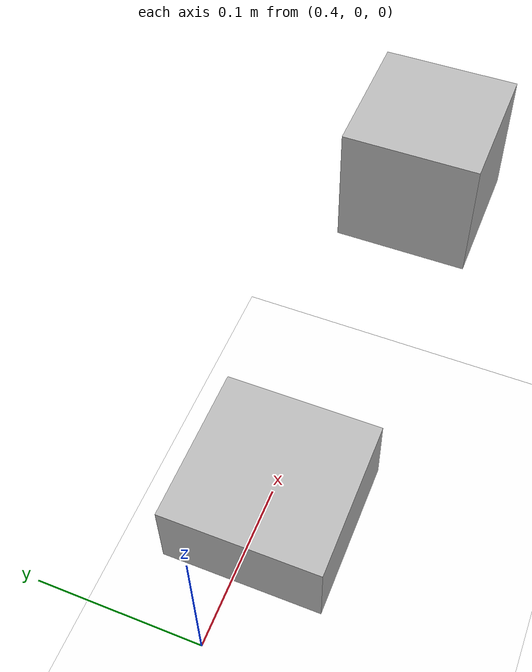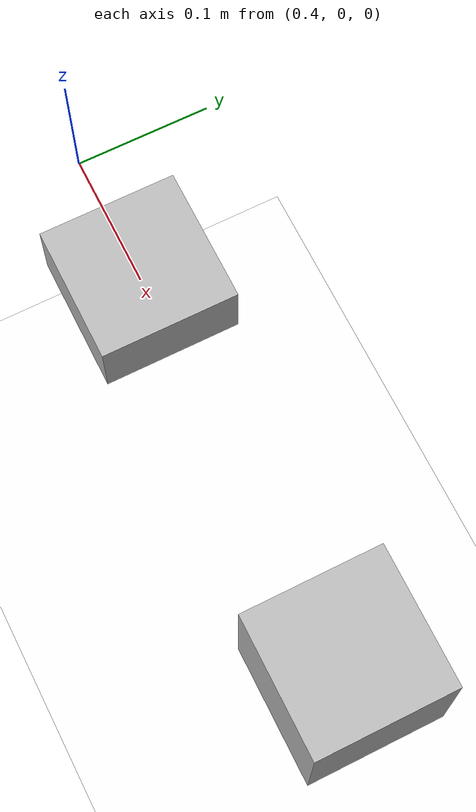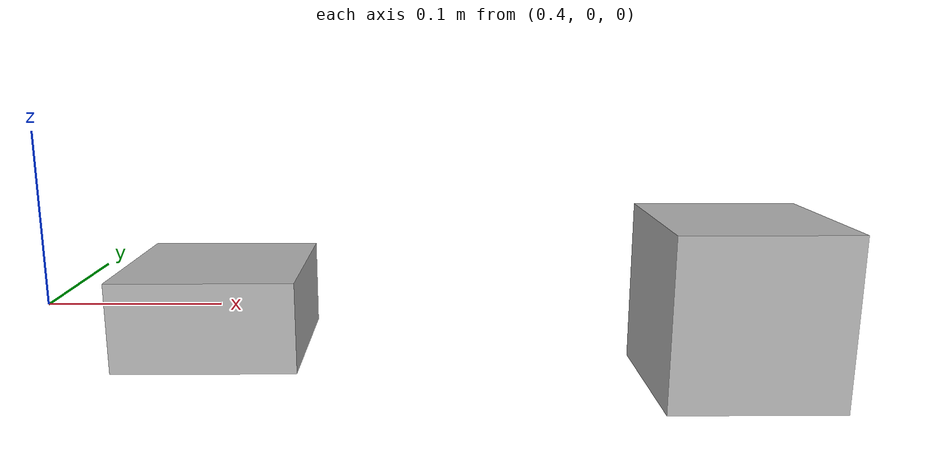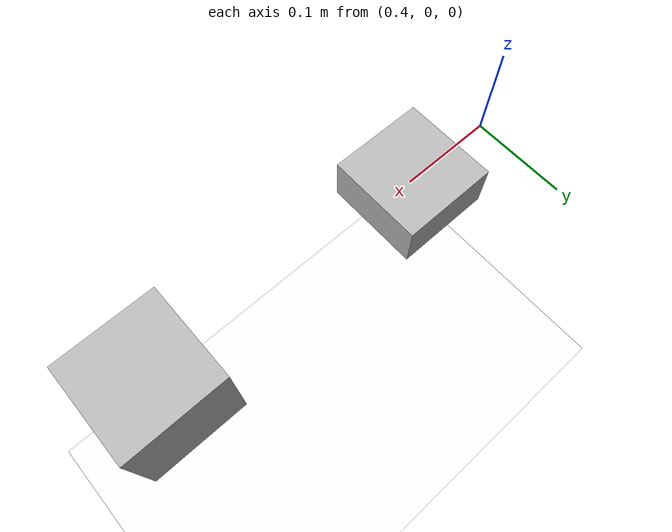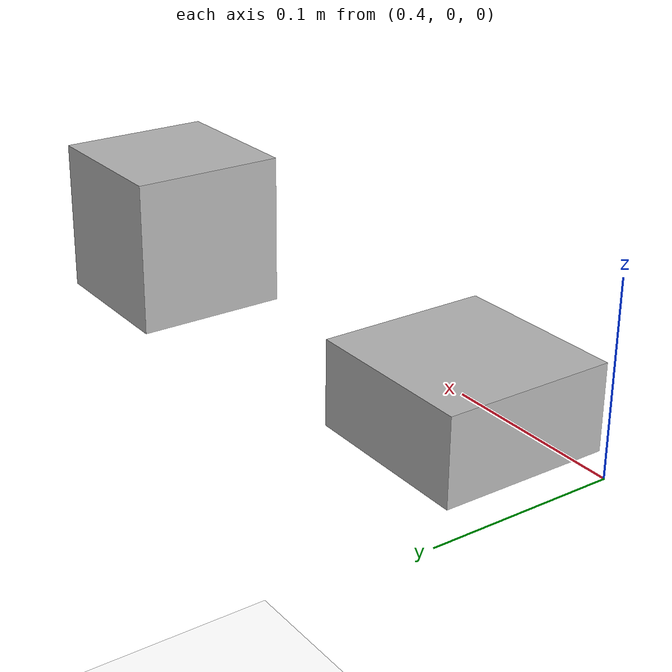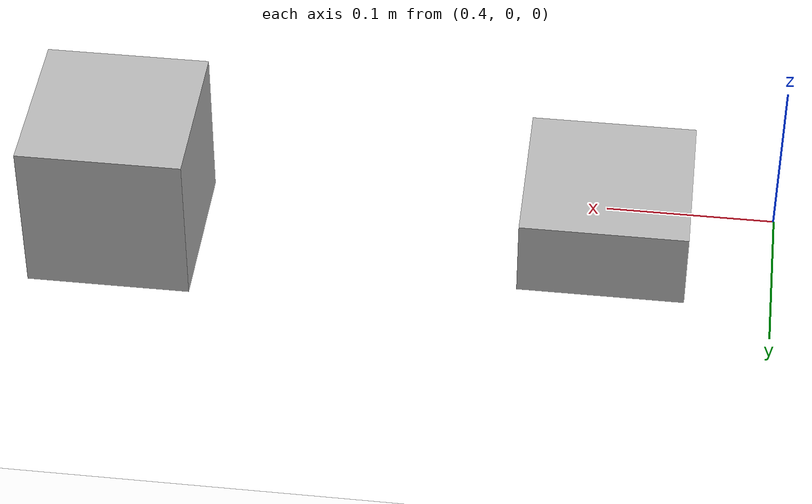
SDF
<?xml version="1.0"?>
<sdf version="1.4">
<world name="simple_world">
    <include>
        <uri>package://assets/cube</uri>
        <pose>0.8 0 0 0 0 0</pose>
    </include>
    <include>
        <uri>package://assets/rectangle</uri>
        <pose>0.5 0 0 0 0 0</pose>
                <static>true</static>
    </include>
    <!-- Static Plane to prevent things falling to infinity -->
    <include>
        <uri>package://assets/plane</uri>
    </include>
  </world>
</sdf>

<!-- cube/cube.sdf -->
<sdf version="1.4">
  <model name="cube">
      <link name="cube">
        <inertial>
            <mass>2.1</mass>
            <inertia> <ixx>1.0</ixx> <ixy>0</ixy> <ixz>0</ixz> <iyy>1.0</iyy> <iyz>0</iyz> <izz>1.0</izz></inertia>
        </inertial>
        <visual name="vis">
            <pose>0 0 0 0 0 0</pose>
            <geometry><box><size>0.1 0.1 0.1</size></box></geometry>
        </visual>
        <collision name="col">
            <pose> 0 0 0 0 0 0 </pose>
            <geometry><box><size>0.1 0.1 0.1</size></box></geometry>
        </collision>
        </link>
  </model>
</sdf>

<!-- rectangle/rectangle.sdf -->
<sdf version="1.4">
    <model name="rectangle">
      <static>true</static>
      <link name="rectangle">
          <inertial>
            <mass>2.1</mass>
            <inertia> <ixx>1.0</ixx> <ixy>0</ixy> <ixz>0</ixz> <iyy>1.0</iyy> <iyz>0</iyz> <izz>1.0</izz></inertia>
        </inertial>
        <visual name="vis">
            <pose>0 0 0 0 0 0</pose>
            <geometry><box><size>0.1 0.1 0.05</size></box></geometry>
        </visual>
        <collision name="col">
            <pose> 0 0 0 0 0 0 </pose>
            <geometry><box><size>0.1 0.1 0.05</size></box></geometry>
        </collision>
        </link>
  </model>
</sdf>

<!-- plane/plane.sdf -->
<sdf version="1.4">
  <model name="plane">
      <static>true</static>

      <link name="plane">
        <inertial>
            <mass>2.1</mass>
            <inertia> <ixx>1.0</ixx> <ixy>0</ixy> <ixz>0</ixz> <iyy>1.0</iyy> <iyz>0</iyz> <izz>1.0</izz></inertia>
        </inertial>
        <visual name="vis">
            <pose>0 0 -0.5 0 0 0</pose>
            <geometry><box><size>10.0 10.0 0.01</size></box></geometry>
            <material>
                <diffuse>1 1 1 0.25</diffuse>
            </material>
        </visual>
        <collision name="col">
            <pose> 0 0 -0.5 0 0 0 </pose>
            <geometry><box><size>10.0 10.0 0.01</size></box></geometry>
        </collision>
        </link>
  </model>
</sdf>
